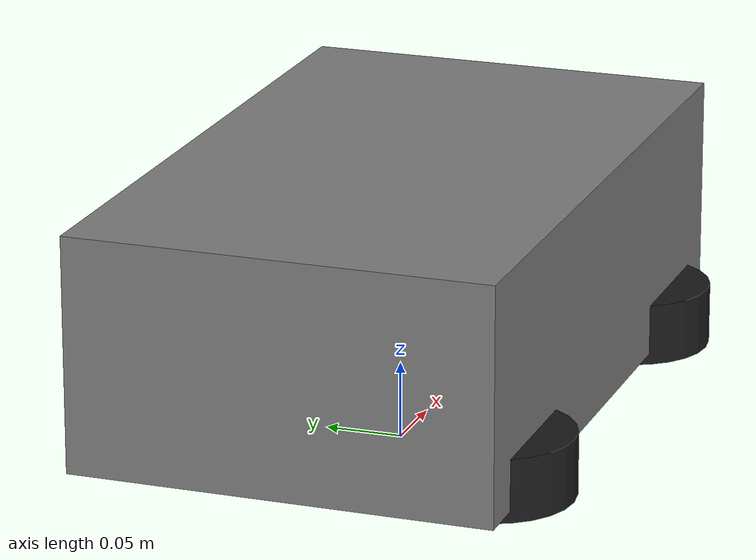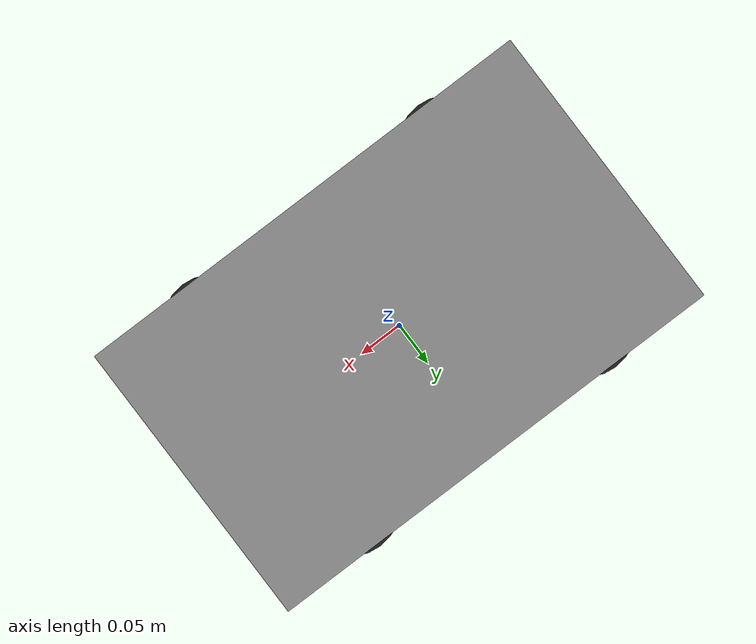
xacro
<?xml version="1.0"?>
<robot xmlns:xacro="http://www.ros.org/wiki/xacro" name="rc_car">

  <xacro:property name="wheel_radius"      value="0.0508"/>
  <xacro:property name="wheel_width"       value="0.04"/>
  <xacro:property name="wheelbase"         value="0.29"/>
  <xacro:property name="track_width"       value="0.22"/>
  <xacro:property name="chassis_length"    value="0.44"/>
  <xacro:property name="chassis_width"     value="0.27"/>
  <xacro:property name="chassis_height"    value="0.15"/>
  <xacro:property name="ground_clearance"  value="0.038"/>
  <xacro:property name="camera_height"     value="0.127"/>  <!-- lens centre above ground -->
  <xacro:property name="camera_forward"    value="0.20"/>   <!-- lens ahead of the axle midpoint -->
  <xacro:property name="steer_max_angle"   value="0.575"/>  <!-- measured mechanical lock, rad; see header -->

  <link name="base_footprint"/>

  <joint name="base_footprint_joint" type="fixed">
    <parent link="base_footprint"/>
    <child link="base_link"/>
    <origin xyz="0 0 ${wheel_radius}" rpy="0 0 0"/>
  </joint>

  <!-- Chassis: AMORIL 1/10 RC Car. Box centre sits ground_clearance + chassis_height/2
       above the floor, expressed relative to base_link at axle height. -->
  <xacro:property name="chassis_centre_z" value="${ground_clearance + chassis_height/2 - wheel_radius}"/>
  <link name="base_link">
    <inertial>
      <origin xyz="0 0 ${chassis_centre_z}"/>
      <mass value="3.0"/>
      <inertia ixx="0.08" ixy="0.0" ixz="0.0" iyy="0.25" iyz="0.0" izz="0.28"/>
    </inertial>
    <visual>
      <origin xyz="0 0 ${chassis_centre_z}"/>
      <geometry>
        <box size="${chassis_length} ${chassis_width} ${chassis_height}"/>
      </geometry>
      <material name="gray">
        <color rgba="0.5 0.5 0.5 1"/>
      </material>
    </visual>
    <collision>
      <origin xyz="0 0 ${chassis_centre_z}"/>
      <geometry>
        <box size="${chassis_length} ${chassis_width} ${chassis_height}"/>
      </geometry>
    </collision>
  </link>
  <!-- Wheel links -->
  <link name="front_left_wheel">
    <visual>
      <geometry>
        <cylinder length="${wheel_width}" radius="${wheel_radius}"/>
      </geometry>
      <material name="black"><color rgba="0.1 0.1 0.1 1"/></material>
    </visual>
    <collision>
      <geometry>
        <cylinder length="${wheel_width}" radius="${wheel_radius}"/>
      </geometry>
    </collision>
  </link>
  <link name="front_right_wheel">
    <visual>
      <geometry>
        <cylinder length="${wheel_width}" radius="${wheel_radius}"/>
      </geometry>
      <material name="black"/>
    </visual>
    <collision>
      <geometry>
        <cylinder length="${wheel_width}" radius="${wheel_radius}"/>
      </geometry>
    </collision>
  </link>
  <link name="rear_left_wheel">
    <visual>
      <geometry>
        <cylinder length="${wheel_width}" radius="${wheel_radius}"/>
      </geometry>
      <material name="black"/>
    </visual>
    <collision>
      <geometry>
        <cylinder length="${wheel_width}" radius="${wheel_radius}"/>
      </geometry>
    </collision>
  </link>
  <link name="rear_right_wheel">
    <visual>
      <geometry>
        <cylinder length="${wheel_width}" radius="${wheel_radius}"/>
      </geometry>
      <material name="black"/>
    </visual>
    <collision>
      <geometry>
        <cylinder length="${wheel_width}" radius="${wheel_radius}"/>
      </geometry>
    </collision>
  </link>
  <!-- Wheel joints (front: steerable, rear: fixed) -->
  <!-- Axles lie in the base_link plane; wheels sit half a track width to each side. -->
  <joint name="front_left_wheel_joint" type="continuous">
    <parent link="steering_link"/>
    <child link="front_left_wheel"/>
    <origin xyz="0 ${track_width/2} 0" rpy="0 0 0"/>
    <axis xyz="0 1 0"/>
  </joint>
  <joint name="front_right_wheel_joint" type="continuous">
    <parent link="steering_link"/>
    <child link="front_right_wheel"/>
    <origin xyz="0 ${-track_width/2} 0" rpy="0 0 0"/>
    <axis xyz="0 1 0"/>
  </joint>
  <joint name="rear_left_wheel_joint" type="continuous">
    <parent link="traction_link"/>
    <child link="rear_left_wheel"/>
    <origin xyz="0 ${track_width/2} 0" rpy="0 0 0"/>
    <axis xyz="0 1 0"/>
  </joint>
  <joint name="rear_right_wheel_joint" type="continuous">
    <parent link="traction_link"/>
    <child link="rear_right_wheel"/>
    <origin xyz="0 ${-track_width/2} 0" rpy="0 0 0"/>
    <axis xyz="0 1 0"/>
  </joint>

  <link name="steering_link"/>
  <link name="traction_link"/>

  <link name="camera_link">
    <visual>
      <geometry><box size="0.025 0.09 0.025"/></geometry>
      <material name="blue"><color rgba="0.2 0.2 0.8 1"/></material>
    </visual>
  </link>

  <joint name="steering_joint" type="revolute">
    <parent link="base_link"/>
    <child link="steering_link"/>
    <origin xyz="${wheelbase/2} 0 0" rpy="0 0 0"/>
    <axis xyz="0 0 1"/>
    <limit lower="${-steer_max_angle}" upper="${steer_max_angle}" effort="1" velocity="1"/>
  </joint>

  <joint name="traction_joint" type="continuous">
    <parent link="base_link"/>
    <child link="traction_link"/>
    <origin xyz="${-wheelbase/2} 0 0" rpy="0 0 0"/>
    <axis xyz="0 1 0"/>
  </joint>

  <joint name="camera_joint" type="fixed">
    <parent link="base_link"/>
    <child link="camera_link"/>
    <origin xyz="${camera_forward} 0 ${camera_height - wheel_radius}" rpy="0 0 0"/>
  </joint>

  <link name="camera_infra1_optical_frame"/>
  <joint name="camera_infra1_joint" type="fixed">
    <parent link="camera_link"/>
    <child link="camera_infra1_optical_frame"/>
    <origin xyz="0 0 0" rpy="-1.5708 0 -1.5708"/>
  </joint>

  <link name="camera_infra2_optical_frame"/>
  <joint name="camera_infra2_joint" type="fixed">
    <parent link="camera_link"/>
    <child link="camera_infra2_optical_frame"/>
    <origin xyz="0 -0.050 0" rpy="-1.5708 0 -1.5708"/>
  </joint>

  <link name="camera_imu_optical_frame"/>
  <joint name="camera_imu_joint" type="fixed">
    <parent link="camera_infra1_optical_frame"/>
    <child link="camera_imu_optical_frame"/>
    <origin xyz="-0.005 0 0.005" rpy="0 0 0"/>
  </joint>

  <link name="camera_gyro_optical_frame"/>
  <joint name="camera_gyro_joint" type="fixed">
    <parent link="camera_infra1_optical_frame"/>
    <child link="camera_gyro_optical_frame"/>
    <origin xyz="0 0 0" rpy="0 0 0"/>
  </joint>

  <link name="camera_accel_optical_frame"/>
  <joint name="camera_accel_joint" type="fixed">
    <parent link="camera_infra1_optical_frame"/>
    <child link="camera_accel_optical_frame"/>
    <origin xyz="0 0 0" rpy="0 0 0"/>
  </joint>

    <!-- Add camera_depth_optical_frame -->
    <link name="camera_depth_optical_frame"/>
    <joint name="camera_depth_joint" type="fixed">
      <parent link="camera_link"/>
      <child link="camera_depth_optical_frame"/>
      <!-- Standard RealSense orientation: optical frame (Z forward, X right, Y down) -->
      <origin xyz="0 0 0" rpy="-1.5708 0 -1.5708"/>
    </joint>

  <ros2_control name="JetsonOrinPCA9685" type="system">
    <hardware>
      <plugin>pca9685_hardware_interface/Pca9685SystemHardware</plugin>
      <param name="device">/dev/i2c-7</param>
      <param name="address">64</param>
      <param name="frequency">50</param>   <!-- PWM Hz; servo and ESC both expect 50 -->
    </hardware>
    <joint name="steering_joint">
      <command_interface name="position" />
      <state_interface name="position" />
      <param name="channel">0</param>
      <param name="offset">0.0</param>                    <!-- rad, trim added before clamping -->
      <param name="min_angle">${-steer_max_angle}</param> <!-- reached at min_pulse_us -->
      <param name="max_angle">${steer_max_angle}</param>  <!-- reached at max_pulse_us -->
      <param name="min_pulse_us">1000</param>
      <param name="neutral_pulse_us">1500</param>         <!-- pulse at angle 0 -->
      <param name="max_pulse_us">2000</param>
    </joint>
    <joint name="traction_joint">
      <command_interface name="velocity" />
      <state_interface name="velocity" />
      <state_interface name="position" />
      <param name="channel">1</param>
      <param name="min_pulse_us">1000</param>
      <param name="neutral_pulse_us">1500</param>
      <param name="max_pulse_us">2000</param>
      <!-- Wheel speed that reaches max_output. PLACEHOLDER: 0.5 m/s / 0.0508 m.
           Measure: drive at max_output on a known distance, divide speed by
           wheel_radius, write the number here. -->
      <param name="max_wheel_speed_rad_s">10.0</param>
      <param name="input_deadband_rad_s">0.01</param>     <!-- below this the ESC is held neutral -->
      <param name="forward_offset">0.271</param>          <!-- first fraction that moves the car forward -->
      <param name="reverse_offset">-0.0405</param>        <!-- first fraction that moves the car backward -->
      <param name="max_output">0.40</param>               <!-- absolute cap while path following is tuned -->
      <param name="watchdog_timeout_s">0.0</param>        <!-- disabled; the velocity mux (#3) owns stop-on-silence -->
      <!-- ESC arming on activation, then direction-change dwells. -->
      <param name="arming_neutral_s">2.5</param>
      <param name="arming_pulse_s">0.5</param>
      <param name="arming_pulse_output">0.05</param>
      <param name="arming_settle_s">0.5</param>
      <param name="reverse_brake_s">0.20</param>
      <param name="reverse_tap_output">0.10</param>
      <param name="reverse_release_s">0.20</param>
      <param name="reverse_settle_s">0.20</param>
      <param name="forward_settle_s">0.20</param>
    </joint>
  </ros2_control>
</robot>
